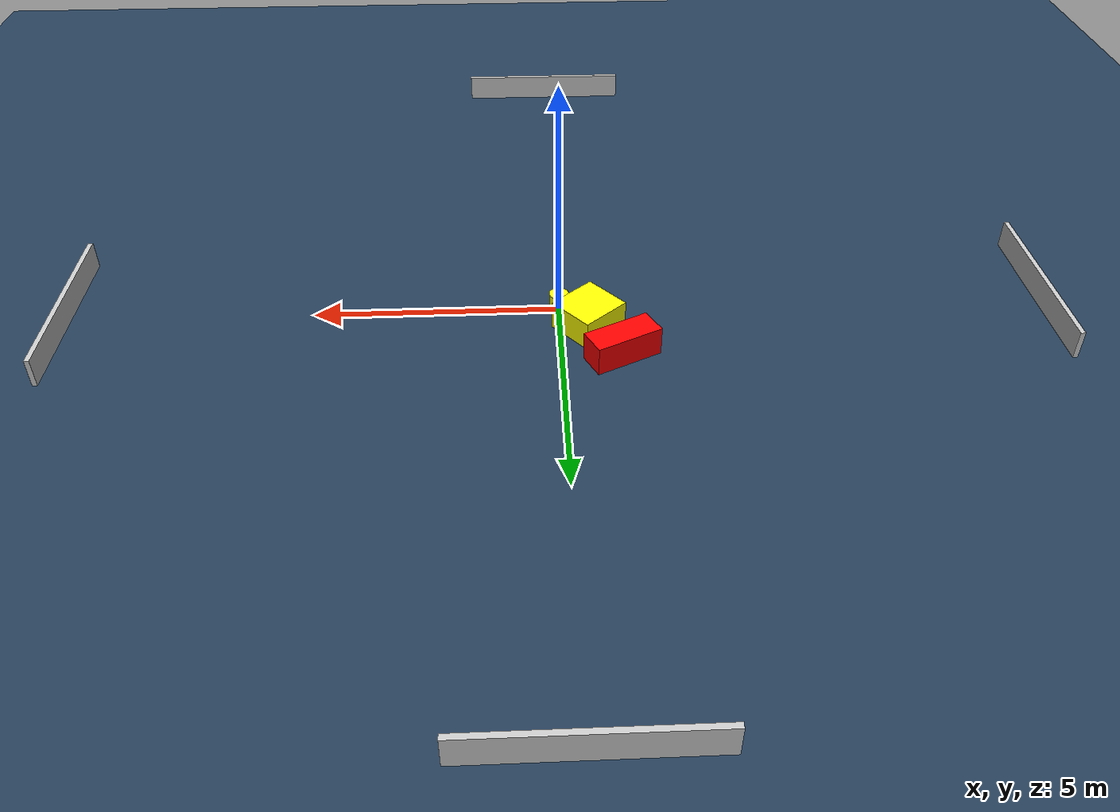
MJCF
<?xml version="1.0" ?>
<mujoco model="generated_environment">
  <option timestep="0.01" integrator="RK4" cone="elliptic"/>
  <default>
    <geom density="1"/>
  </default>
  <asset>
    <texture builtin="gradient" height="3072" name="skybox" rgb1="0.3 0.5 0.7" rgb2="0 0 0" type="skybox" width="512"/>
    <texture builtin="checker" height="300" name="groundplane" rgb1="0.2 0.3 0.4" rgb2="0.1 0.2 0.3" type="2d" width="300"/>
    <material name="groundplane" reflectance="0.2" texrepeat="5 5" texture="groundplane"/>
  </asset>
  <worldbody>
    <light dir="0 0 -1" directional="true" pos="0 0 1.5"/>
    <geom condim="3" friction="0.5 0.005 0.001" material="groundplane" name="floor" pos="0 0 0" size="0 0 0.05" type="plane"/>
    <body name="walls">
      <geom name="wall_1" condim="4" pos="-10.0 0.0 0.3" rgba="0.800000011920929 0.800000011920929 0.800000011920929 1.0" size="0.05 2.0 0.3" type="box"/>
      <geom name="wall_2" condim="4" pos="10.0 0.0 0.3" rgba="0.800000011920929 0.800000011920929 0.800000011920929 1.0" size="0.05 2.0 0.3" type="box"/>
      <geom name="wall_3" condim="4" pos="0.0 -10.0 0.3" rgba="0.800000011920929 0.800000011920929 0.800000011920929 1.0" size="2.0 0.05 0.3" type="box"/>
      <geom name="wall_4" condim="4" pos="0.0 10.0 0.3" rgba="0.800000011920929 0.800000011920929 0.800000011920929 1.0" size="2.0 0.05 0.3" type="box"/>
    </body>
    <body name="robot">
      <joint name="joint_x" type="slide" pos="0 0 0" axis="1 0 0"/>
      <joint name="joint_y" type="slide" pos="0 0 0" axis="0 1 0"/>
      <geom name="robot" type="cylinder" pos="0.0 0.0 0.2" size="0.2 0.2 0.0" mass="5.0" friction="1.0 0.005 0.0001" condim="4" rgba="1.0 1.0 0.0 1.0"/>
    </body>
    <body name="obstacle_1_movable">
      <geom name="obstacle_1_movable" condim="4" pos="-0.5699770642159062 0.6102152913776213 0.3" euler="0 0 310.9813090828787" friction="0.0 0.005 0.001" rgba="1.0 1.0 0.0 1.0" size="0.5050167238289618 0.5353583036388996 0.3" type="box" mass="0.1"/>
      <joint type="free"/>
    </body>
    <body name="obstacle_2_static">
      <geom name="obstacle_2_static" condim="4" pos="-1.1725830970162292 1.5607340639684775 0.3" euler="0 0 206.01943794799863" friction="0.0 0.005 0.001" rgba="1.0 0.0 0.0 1.0" size="0.7031560256101184 0.2941183581412354 0.3" type="box"/>
    </body>
  </worldbody>
  <actuator>
    <motor name="actuator_x" joint="joint_x" gear="1" ctrlrange="-1 1"/>
    <motor name="actuator_y" joint="joint_y" gear="1" ctrlrange="-1 1"/>
  </actuator>
</mujoco>
